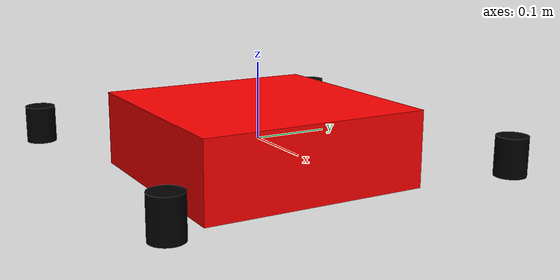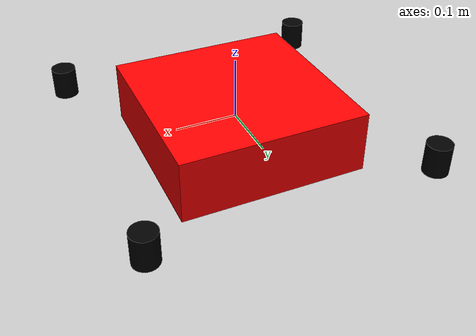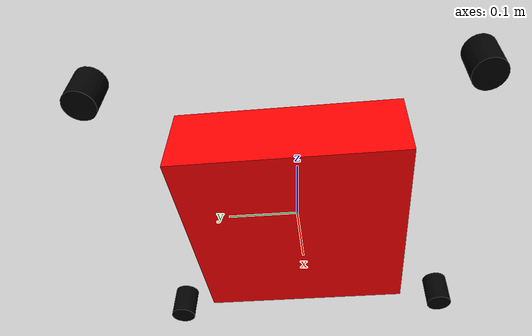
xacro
<?xml version="1.0"?>
<robot xmlns:xacro="http://www.ros.org/wiki/xacro" name="quadrotor_drone">

  <!-- Parametreler -->
  <xacro:property name="mass" value="1.2"/>
  <xacro:property name="body_size_x" value="0.3"/>
  <xacro:property name="body_size_y" value="0.3"/>
  <xacro:property name="body_size_z" value="0.1"/>
  <xacro:property name="arm_length" value="0.225"/>

  <!-- Ana gövde (body) -->
  <link name="base_link">
    <inertial>
      <mass value="${mass}"/>
      <inertia ixx="0.02" ixy="0.0" ixz="0.0" iyy="0.02" iyz="0.0" izz="0.04"/>
    </inertial>
    <visual>
      <geometry>
        <box size="${body_size_x} ${body_size_y} ${body_size_z}"/>
      </geometry>
      <material name="red">
        <color rgba="1.0 0.0 0.0 1.0"/>
      </material>
    </visual>
    <collision>
      <geometry>
        <box size="${body_size_x} ${body_size_y} ${body_size_z}"/>
      </geometry>
    </collision>
  </link>

  <!-- Motor 1 (ön sol) -->
  <link name="motor_1_link">
    <inertial>
      <mass value="0.1"/>
      <inertia ixx="0.0001" ixy="0.0" ixz="0.0" iyy="0.0001" iyz="0.0" izz="0.0001"/>
    </inertial>
    <visual>
      <geometry>
        <cylinder radius="0.02" length="0.05"/>
      </geometry>
      <material name="black">
        <color rgba="0.0 0.0 0.0 1.0"/>
      </material>
    </visual>
    <collision>
      <geometry>
        <cylinder radius="0.02" length="0.05"/>
      </geometry>
    </collision>
  </link>

  <!-- Motor 2 (ön sağ) -->
  <link name="motor_2_link">
    <inertial>
      <mass value="0.1"/>
      <inertia ixx="0.0001" ixy="0.0" ixz="0.0" iyy="0.0001" iyz="0.0" izz="0.0001"/>
    </inertial>
    <visual>
      <geometry>
        <cylinder radius="0.02" length="0.05"/>
      </geometry>
      <material name="black">
        <color rgba="0.0 0.0 0.0 1.0"/>
      </material>
    </visual>
    <collision>
      <geometry>
        <cylinder radius="0.02" length="0.05"/>
      </geometry>
    </collision>
  </link>

  <!-- Motor 3 (arka sol) -->
  <link name="motor_3_link">
    <inertial>
      <mass value="0.1"/>
      <inertia ixx="0.0001" ixy="0.0" ixz="0.0" iyy="0.0001" iyz="0.0" izz="0.0001"/>
    </inertial>
    <visual>
      <geometry>
        <cylinder radius="0.02" length="0.05"/>
      </geometry>
      <material name="black">
        <color rgba="0.0 0.0 0.0 1.0"/>
      </material>
    </visual>
    <collision>
      <geometry>
        <cylinder radius="0.02" length="0.05"/>
      </geometry>
    </collision>
  </link>

  <!-- Motor 4 (arka sağ) -->
  <link name="motor_4_link">
    <inertial>
      <mass value="0.1"/>
      <inertia ixx="0.0001" ixy="0.0" ixz="0.0" iyy="0.0001" iyz="0.0" izz="0.0001"/>
    </inertial>
    <visual>
      <geometry>
        <cylinder radius="0.02" length="0.05"/>
      </geometry>
      <material name="black">
        <color rgba="0.0 0.0 0.0 1.0"/>
      </material>
    </visual>
    <collision>
      <geometry>
        <cylinder radius="0.02" length="0.05"/>
      </geometry>
    </collision>
  </link>

  <!-- Motor Bağlantıları (Joints) -->
  <!-- Motor 1: Ön Sol -->
  <joint name="motor_1_joint" type="revolute">
    <parent link="base_link"/>
    <child link="motor_1_link"/>
    <origin xyz="${arm_length} ${arm_length} 0" rpy="0 0 0"/>
    <axis xyz="0 0 1"/>
    <limit lower="0" upper="2.0" effort="10.0" velocity="100.0"/>
  </joint>

  <!-- Motor 2: Ön Sağ -->
  <joint name="motor_2_joint" type="revolute">
    <parent link="base_link"/>
    <child link="motor_2_link"/>
    <origin xyz="${arm_length} ${-arm_length} 0" rpy="0 0 0"/>
    <axis xyz="0 0 1"/>
    <limit lower="0" upper="2.0" effort="10.0" velocity="100.0"/>
  </joint>

  <!-- Motor 3: Arka Sol -->
  <joint name="motor_3_joint" type="revolute">
    <parent link="base_link"/>
    <child link="motor_3_link"/>
    <origin xyz="${-arm_length} ${arm_length} 0" rpy="0 0 0"/>
    <axis xyz="0 0 1"/>
    <limit lower="0" upper="2.0" effort="10.0" velocity="100.0"/>
  </joint>

  <!-- Motor 4: Arka Sağ -->
  <joint name="motor_4_joint" type="revolute">
    <parent link="base_link"/>
    <child link="motor_4_link"/>
    <origin xyz="${-arm_length} ${-arm_length} 0" rpy="0 0 0"/>
    <axis xyz="0 0 1"/>
    <limit lower="0" upper="2.0" effort="10.0" velocity="100.0"/>
  </joint>

  <!-- Gazebo ek ayarları -->
  <gazebo>
    <plugin name="gazebo_ros_control" filename="libgazebo_ros_control.so"/>
  </gazebo>

  <gazebo reference="base_link">
    <material>Gazebo/Red</material>
  </gazebo>

  <gazebo reference="motor_1_link">
    <material>Gazebo/Black</material>
  </gazebo>

  <gazebo reference="motor_2_link">
    <material>Gazebo/Black</material>
  </gazebo>

  <gazebo reference="motor_3_link">
    <material>Gazebo/Black</material>
  </gazebo>

  <gazebo reference="motor_4_link">
    <material>Gazebo/Black</material>
  </gazebo>

</robot>
